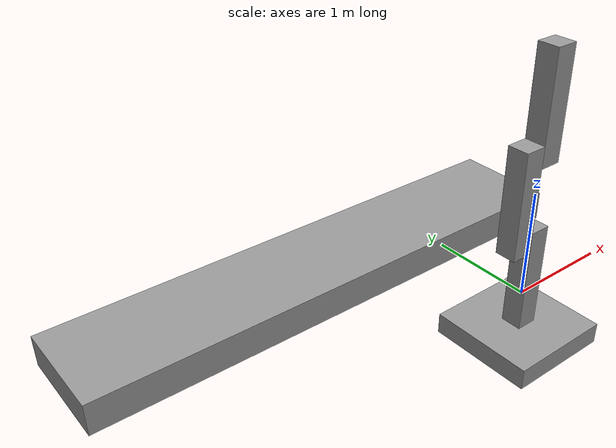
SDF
<?xml version='1.0'?>
<sdf version='1.7'>
  <model name='model_albue_prototyp'>
    <link name='link'>
      <inertial>
        <mass>1</mass>
        <inertia>
          <ixx>0.166667</ixx>
          <ixy>0</ixy>
          <ixz>0</ixz>
          <iyy>0.166667</iyy>
          <iyz>0</iyz>
          <izz>0.166667</izz>
        </inertia>
        <pose>0 0 0 0 -0 0</pose>
      </inertial>
      <self_collide>0</self_collide>
      <enable_wind>0</enable_wind>
      <kinematic>0</kinematic>
      <pose>0 0 0.2 0 -0 0</pose>
      <gravity>1</gravity>
      <visual name='visual'>
        <geometry>
          <box>
            <size>0.2 0.2 1</size>
          </box>
        </geometry>
        <material>
          <script>
            <name>Gazebo/Grey</name>
            <uri>file://media/materials/scripts/gazebo.material</uri>
          </script>
          <shader type='pixel'>
            <normal_map>__default__</normal_map>
          </shader>
          <ambient>0.3 0.3 0.3 1</ambient>
          <diffuse>0.7 0.7 0.7 1</diffuse>
          <specular>0.01 0.01 0.01 1</specular>
          <emissive>0 0 0 1</emissive>
        </material>
        <pose>0 0 0 0 -0 0</pose>
        <transparency>0</transparency>
        <cast_shadows>1</cast_shadows>
      </visual>
      <collision name='collision'>
        <laser_retro>0</laser_retro>
        <max_contacts>10</max_contacts>
        <pose>0 0 0 0 -0 0</pose>
        <geometry>
          <box>
            <size>0.2 0.2 1</size>
          </box>
        </geometry>
        <surface>
          <friction>
            <ode>
              <mu>1</mu>
              <mu2>1</mu2>
              <fdir1>0 0 0</fdir1>
              <slip1>0</slip1>
              <slip2>0</slip2>
            </ode>
            <torsional>
              <coefficient>1</coefficient>
              <patch_radius>0</patch_radius>
              <surface_radius>0</surface_radius>
              <use_patch_radius>1</use_patch_radius>
              <ode>
                <slip>0</slip>
              </ode>
            </torsional>
          </friction>
          <bounce>
            <restitution_coefficient>0</restitution_coefficient>
            <threshold>1e+06</threshold>
          </bounce>
          <contact>
            <collide_without_contact>0</collide_without_contact>
            <collide_without_contact_bitmask>1</collide_without_contact_bitmask>
            <collide_bitmask>1</collide_bitmask>
            <ode>
              <soft_cfm>0</soft_cfm>
              <soft_erp>0.2</soft_erp>
              <kp>1e+13</kp>
              <kd>1</kd>
              <max_vel>0.01</max_vel>
              <min_depth>0</min_depth>
            </ode>
            <bullet>
              <split_impulse>1</split_impulse>
              <split_impulse_penetration_threshold>-0.01</split_impulse_penetration_threshold>
              <soft_cfm>0</soft_cfm>
              <soft_erp>0.2</soft_erp>
              <kp>1e+13</kp>
              <kd>1</kd>
            </bullet>
          </contact>
        </surface>
      </collision>
    </link>
    <link name='link_0'>
      <inertial>
        <mass>1</mass>
        <inertia>
          <ixx>0.166667</ixx>
          <ixy>0</ixy>
          <ixz>0</ixz>
          <iyy>0.166667</iyy>
          <iyz>0</iyz>
          <izz>0.166667</izz>
        </inertia>
        <pose>0 0 0 0 -0 0</pose>
      </inertial>
      <pose>-0.2 0 1 0 -0 0</pose>
      <gravity>1</gravity>
      <self_collide>0</self_collide>
      <kinematic>0</kinematic>
      <enable_wind>0</enable_wind>
      <visual name='visual'>
        <pose>0 0 0 0 -0 0</pose>
        <geometry>
          <box>
            <size>0.2 0.2 1</size>
          </box>
        </geometry>
        <material>
          <lighting>1</lighting>
          <script>
            <uri>file://media/materials/scripts/gazebo.material</uri>
            <name>Gazebo/Grey</name>
          </script>
          <shader type='pixel'>
            <normal_map>__default__</normal_map>
          </shader>
          <ambient>0.3 0.3 0.3 1</ambient>
          <diffuse>0.7 0.7 0.7 1</diffuse>
          <specular>0.01 0.01 0.01 1</specular>
          <emissive>0 0 0 1</emissive>
        </material>
        <transparency>0</transparency>
        <cast_shadows>1</cast_shadows>
      </visual>
      <collision name='collision'>
        <laser_retro>0</laser_retro>
        <max_contacts>10</max_contacts>
        <pose>0 0 0 0 -0 0</pose>
        <geometry>
          <box>
            <size>0.2 0.2 1</size>
          </box>
        </geometry>
        <surface>
          <friction>
            <ode>
              <mu>1</mu>
              <mu2>1</mu2>
              <fdir1>0 0 0</fdir1>
              <slip1>0</slip1>
              <slip2>0</slip2>
            </ode>
            <torsional>
              <coefficient>1</coefficient>
              <patch_radius>0</patch_radius>
              <surface_radius>0</surface_radius>
              <use_patch_radius>1</use_patch_radius>
              <ode>
                <slip>0</slip>
              </ode>
            </torsional>
          </friction>
          <bounce>
            <restitution_coefficient>0</restitution_coefficient>
            <threshold>1e+06</threshold>
          </bounce>
          <contact>
            <collide_without_contact>0</collide_without_contact>
            <collide_without_contact_bitmask>1</collide_without_contact_bitmask>
            <collide_bitmask>1</collide_bitmask>
            <ode>
              <soft_cfm>0</soft_cfm>
              <soft_erp>0.2</soft_erp>
              <kp>1e+13</kp>
              <kd>1</kd>
              <max_vel>0.01</max_vel>
              <min_depth>0</min_depth>
            </ode>
            <bullet>
              <split_impulse>1</split_impulse>
              <split_impulse_penetration_threshold>-0.01</split_impulse_penetration_threshold>
              <soft_cfm>0</soft_cfm>
              <soft_erp>0.2</soft_erp>
              <kp>1e+13</kp>
              <kd>1</kd>
            </bullet>
          </contact>
        </surface>
      </collision>
    </link>
    <link name='link_0_0'>
      <inertial>
        <mass>1</mass>
        <inertia>
          <ixx>0.166667</ixx>
          <ixy>0</ixy>
          <ixz>0</ixz>
          <iyy>0.166667</iyy>
          <iyz>0</iyz>
          <izz>0.166667</izz>
        </inertia>
        <pose>0 0 0 0 -0 0</pose>
      </inertial>
      <pose>-1.17211 1.42882 0 -0 -0 -0.007702</pose>
      <gravity>1</gravity>
      <self_collide>0</self_collide>
      <kinematic>0</kinematic>
      <enable_wind>0</enable_wind>
      <visual name='visual'>
        <pose>0 0 0 0 -0 0</pose>
        <geometry>
          <box>
            <size>5 1 0.3</size>
          </box>
        </geometry>
        <material>
          <lighting>1</lighting>
          <script>
            <uri>file://media/materials/scripts/gazebo.material</uri>
            <name>Gazebo/Grey</name>
          </script>
          <shader type='pixel'>
            <normal_map>__default__</normal_map>
          </shader>
          <ambient>0.3 0.3 0.3 1</ambient>
          <diffuse>0.7 0.7 0.7 1</diffuse>
          <specular>0.01 0.01 0.01 1</specular>
          <emissive>0 0 0 1</emissive>
        </material>
        <transparency>0</transparency>
        <cast_shadows>1</cast_shadows>
      </visual>
      <collision name='collision'>
        <laser_retro>0</laser_retro>
        <max_contacts>10</max_contacts>
        <pose>0 0 0 0 -0 0</pose>
        <geometry>
          <box>
            <size>5 1 0.3</size>
          </box>
        </geometry>
        <surface>
          <friction>
            <ode>
              <mu>1</mu>
              <mu2>1</mu2>
              <fdir1>0 0 0</fdir1>
              <slip1>0</slip1>
              <slip2>0</slip2>
            </ode>
            <torsional>
              <coefficient>1</coefficient>
              <patch_radius>0</patch_radius>
              <surface_radius>0</surface_radius>
              <use_patch_radius>1</use_patch_radius>
              <ode>
                <slip>0</slip>
              </ode>
            </torsional>
          </friction>
          <bounce>
            <restitution_coefficient>0</restitution_coefficient>
            <threshold>1e+06</threshold>
          </bounce>
          <contact>
            <collide_without_contact>0</collide_without_contact>
            <collide_without_contact_bitmask>1</collide_without_contact_bitmask>
            <collide_bitmask>1</collide_bitmask>
            <ode>
              <soft_cfm>0</soft_cfm>
              <soft_erp>0.2</soft_erp>
              <kp>1e+13</kp>
              <kd>1</kd>
              <max_vel>0.01</max_vel>
              <min_depth>0</min_depth>
            </ode>
            <bullet>
              <split_impulse>1</split_impulse>
              <split_impulse_penetration_threshold>-0.01</split_impulse_penetration_threshold>
              <soft_cfm>0</soft_cfm>
              <soft_erp>0.2</soft_erp>
              <kp>1e+13</kp>
              <kd>1</kd>
            </bullet>
          </contact>
        </surface>
      </collision>
    </link>
    <link name='link_0_clone'>
      <inertial>
        <mass>1</mass>
        <inertia>
          <ixx>0.166667</ixx>
          <ixy>0</ixy>
          <ixz>0</ixz>
          <iyy>0.166667</iyy>
          <iyz>0</iyz>
          <izz>0.166667</izz>
        </inertia>
        <pose>0 0 0 0 -0 0</pose>
      </inertial>
      <pose>0 0 1.8 -0 -0 -0.000255</pose>
      <gravity>1</gravity>
      <self_collide>0</self_collide>
      <kinematic>0</kinematic>
      <enable_wind>0</enable_wind>
      <visual name='visual'>
        <pose>0 0 0 0 -0 0</pose>
        <geometry>
          <box>
            <size>0.2 0.2 1</size>
          </box>
        </geometry>
        <material>
          <lighting>1</lighting>
          <script>
            <uri>file://media/materials/scripts/gazebo.material</uri>
            <name>Gazebo/Grey</name>
          </script>
          <shader type='pixel'>
            <normal_map>__default__</normal_map>
          </shader>
          <ambient>0.3 0.3 0.3 1</ambient>
          <diffuse>0.7 0.7 0.7 1</diffuse>
          <specular>0.01 0.01 0.01 1</specular>
          <emissive>0 0 0 1</emissive>
        </material>
        <transparency>0</transparency>
        <cast_shadows>1</cast_shadows>
      </visual>
      <collision name='collision'>
        <laser_retro>0</laser_retro>
        <max_contacts>10</max_contacts>
        <pose>0 0 0 0 -0 0</pose>
        <geometry>
          <box>
            <size>0.2 0.2 1</size>
          </box>
        </geometry>
        <surface>
          <friction>
            <ode>
              <mu>1</mu>
              <mu2>1</mu2>
              <fdir1>0 0 0</fdir1>
              <slip1>0</slip1>
              <slip2>0</slip2>
            </ode>
            <torsional>
              <coefficient>1</coefficient>
              <patch_radius>0</patch_radius>
              <surface_radius>0</surface_radius>
              <use_patch_radius>1</use_patch_radius>
              <ode>
                <slip>0</slip>
              </ode>
            </torsional>
          </friction>
          <bounce>
            <restitution_coefficient>0</restitution_coefficient>
            <threshold>1e+06</threshold>
          </bounce>
          <contact>
            <collide_without_contact>0</collide_without_contact>
            <collide_without_contact_bitmask>1</collide_without_contact_bitmask>
            <collide_bitmask>1</collide_bitmask>
            <ode>
              <soft_cfm>0</soft_cfm>
              <soft_erp>0.2</soft_erp>
              <kp>1e+13</kp>
              <kd>1</kd>
              <max_vel>0.01</max_vel>
              <min_depth>0</min_depth>
            </ode>
            <bullet>
              <split_impulse>1</split_impulse>
              <split_impulse_penetration_threshold>-0.01</split_impulse_penetration_threshold>
              <soft_cfm>0</soft_cfm>
              <soft_erp>0.2</soft_erp>
              <kp>1e+13</kp>
              <kd>1</kd>
            </bullet>
          </contact>
        </surface>
      </collision>
    </link>
    <link name='link_1'>
      <inertial>
        <mass>10</mass>
        <inertia>
          <ixx>0.866667</ixx>
          <ixy>0</ixy>
          <ixz>0</ixz>
          <iyy>0.866667</iyy>
          <iyz>0</iyz>
          <izz>1.66667</izz>
        </inertia>
        <pose>0 0 0 0 -0 0</pose>
      </inertial>
      <pose>-0 -0 -0.4 0 -0 0</pose>
      <gravity>1</gravity>
      <self_collide>0</self_collide>
      <kinematic>0</kinematic>
      <enable_wind>0</enable_wind>
      <visual name='visual'>
        <pose>0 0 0 0 -0 0</pose>
        <geometry>
          <box>
            <size>1 1 0.2</size>
          </box>
        </geometry>
        <material>
          <lighting>1</lighting>
          <script>
            <uri>file://media/materials/scripts/gazebo.material</uri>
            <name>Gazebo/Grey</name>
          </script>
          <shader type='pixel'>
            <normal_map>__default__</normal_map>
          </shader>
          <ambient>0.3 0.3 0.3 1</ambient>
          <diffuse>0.7 0.7 0.7 1</diffuse>
          <specular>0.01 0.01 0.01 1</specular>
          <emissive>0 0 0 1</emissive>
        </material>
        <transparency>0</transparency>
        <cast_shadows>1</cast_shadows>
      </visual>
      <collision name='collision'>
        <laser_retro>0</laser_retro>
        <max_contacts>10</max_contacts>
        <pose>0 0 0 0 -0 0</pose>
        <geometry>
          <box>
            <size>1 1 0.2</size>
          </box>
        </geometry>
        <surface>
          <friction>
            <ode>
              <mu>1</mu>
              <mu2>1</mu2>
              <fdir1>0 0 0</fdir1>
              <slip1>0</slip1>
              <slip2>0</slip2>
            </ode>
            <torsional>
              <coefficient>1</coefficient>
              <patch_radius>0</patch_radius>
              <surface_radius>0</surface_radius>
              <use_patch_radius>1</use_patch_radius>
              <ode>
                <slip>0</slip>
              </ode>
            </torsional>
          </friction>
          <bounce>
            <restitution_coefficient>0</restitution_coefficient>
            <threshold>1e+06</threshold>
          </bounce>
          <contact>
            <collide_without_contact>0</collide_without_contact>
            <collide_without_contact_bitmask>1</collide_without_contact_bitmask>
            <collide_bitmask>1</collide_bitmask>
            <ode>
              <soft_cfm>0</soft_cfm>
              <soft_erp>0.2</soft_erp>
              <kp>1e+13</kp>
              <kd>1</kd>
              <max_vel>0.01</max_vel>
              <min_depth>0</min_depth>
            </ode>
            <bullet>
              <split_impulse>1</split_impulse>
              <split_impulse_penetration_threshold>-0.01</split_impulse_penetration_threshold>
              <soft_cfm>0</soft_cfm>
              <soft_erp>0.2</soft_erp>
              <kp>1e+13</kp>
              <kd>1</kd>
            </bullet>
          </contact>
        </surface>
      </collision>
    </link>
    <joint name='bottom' type='revolute'>
      <parent>link</parent>
      <child>link_0</child>
      <pose>0 0 -0.4 0 -0 0</pose>
      <axis>
        <xyz>1 0 0</xyz>
        <limit>
          <lower>-2.75</lower>
          <upper>2.75</upper>
          <effort>-1</effort>
          <velocity>-1</velocity>
        </limit>
        <dynamics>
          <spring_reference>0</spring_reference>
          <spring_stiffness>0</spring_stiffness>
          <damping>0.05</damping>
          <friction>0</friction>
        </dynamics>
      </axis>
      <physics>
        <ode>
          <limit>
            <cfm>0</cfm>
            <erp>0.2</erp>
          </limit>
          <suspension>
            <cfm>0</cfm>
            <erp>0.2</erp>
          </suspension>
        </ode>
      </physics>
    </joint>
    <joint name='plate' type='fixed'>
      <parent>link_1</parent>
      <child>link</child>
      <pose>0 0 0 0 -0 0</pose>
      <physics>
        <ode>
          <limit>
            <cfm>0</cfm>
            <erp>0.2</erp>
          </limit>
          <suspension>
            <cfm>0</cfm>
            <erp>0.2</erp>
          </suspension>
        </ode>
      </physics>
    </joint>
    <joint name='top' type='revolute'>
      <parent>link_0</parent>
      <child>link_0_clone</child>
      <pose>0 0 -0.4 0 -0 0</pose>
      <axis>
        <xyz>1 0 0</xyz>
        <limit>
          <lower>-2.75</lower>
          <upper>2.75</upper>
          <effort>-1</effort>
          <velocity>-1</velocity>
        </limit>
        <dynamics>
          <spring_reference>0</spring_reference>
          <spring_stiffness>0</spring_stiffness>
          <damping>0</damping>
          <friction>0</friction>
        </dynamics>
      </axis>
      <physics>
        <ode>
          <limit>
            <cfm>0</cfm>
            <erp>0.2</erp>
          </limit>
          <suspension>
            <cfm>0</cfm>
            <erp>0.2</erp>
          </suspension>
        </ode>
      </physics>
    </joint>
    <static>0</static>
    <allow_auto_disable>1</allow_auto_disable>
  </model>
</sdf>
